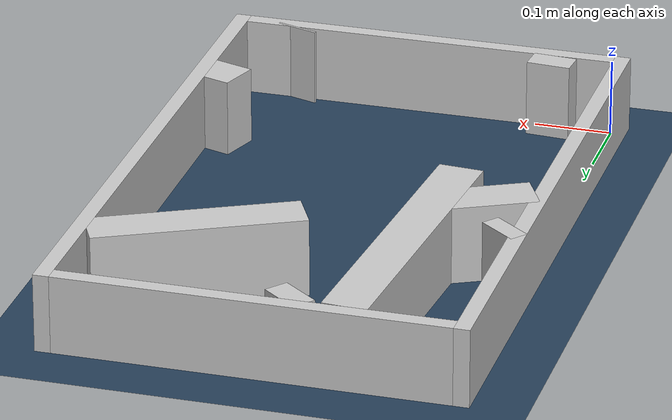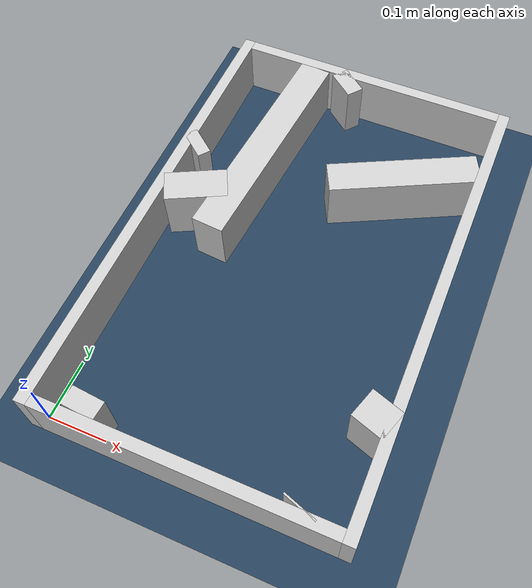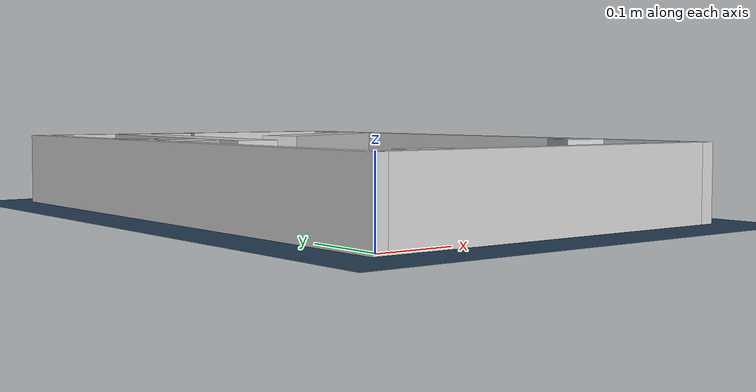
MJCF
<?xml version="1.0" ?>
<mujoco model="generated_real_template">
  <compiler angle="degree"/>
  <option timestep="0.002" integrator="implicitfast" iterations="100" cone="elliptic"/>
  <default>
    <geom density="1"/>
  </default>
  <asset>
    <texture builtin="gradient" height="3072" rgb1="0.3 0.5 0.7" rgb2="0 0 0" type="skybox" width="512"/>
    <texture builtin="checker" height="300" mark="edge" markrgb="0.8 0.8 0.8" name="groundplane" rgb1="0.2 0.3 0.4" rgb2="0.1 0.2 0.3" type="2d" width="300"/>
    <material name="groundplane" reflectance="0.2" texrepeat="5 5" texture="groundplane" texuniform="true"/>
  </asset>
  <worldbody>
    <light dir="0 0 -1" directional="true" pos="0 0 1.5"/>
    <geom name="floor" type="plane" condim="4" friction="0.5 0.005 0.001" material="groundplane" size="0 0 0.05"/>
    <body name="walls">
      <geom name="wall_boundary_left" type="box" condim="4" friction="1.0 0.005 0.0001" rgba="0.8 0.8 0.8 1" pos="-0.010000 0.387500 0.050000" euler="0 0 0.000000" size="0.010000 0.407500 0.050000"/>
      <geom name="wall_boundary_right" type="box" condim="4" friction="1.0 0.005 0.0001" rgba="0.8 0.8 0.8 1" pos="0.500000 0.387500 0.050000" euler="0 0 0.000000" size="0.010000 0.407500 0.050000"/>
      <geom name="wall_boundary_bottom" type="box" condim="4" friction="1.0 0.005 0.0001" rgba="0.8 0.8 0.8 1" pos="0.245000 -0.010000 0.050000" euler="0 0 0.000000" size="0.245000 0.010000 0.050000"/>
      <geom name="wall_boundary_top" type="box" condim="4" friction="1.0 0.005 0.0001" rgba="0.8 0.8 0.8 1" pos="0.245000 0.785000 0.050000" euler="0 0 0.000000" size="0.245000 0.010000 0.050000"/>
      <geom name="wall_inner_1_1" type="box" condim="4" friction="1.0 0.005 0.0001" rgba="0.8 0.8 0.8 1" pos="0.421174 0.001550 0.050000" euler="0 0 71.880067" size="0.001631 0.028500 0.050000"/>
      <geom name="wall_inner_1_2" type="box" condim="4" friction="1.0 0.005 0.0001" rgba="0.8 0.8 0.8 1" pos="0.474701 0.165123 0.050000" euler="0 0 71.880067" size="0.026402 0.028500 0.050000"/>
      <geom name="wall_inner_2_1" type="box" condim="4" friction="1.0 0.005 0.0001" rgba="0.8 0.8 0.8 1" pos="0.075690 0.015953 0.050000" euler="0 0 85.462508" size="0.016003 0.028500 0.050000"/>
      <geom name="wall_inner_2_2" type="box" condim="4" friction="1.0 0.005 0.0001" rgba="0.8 0.8 0.8 1" pos="0.119685 0.570325 0.050000" euler="0 0 85.462508" size="0.205318 0.028500 0.050000"/>
      <geom name="wall_inner_3_1" type="box" condim="4" friction="1.0 0.005 0.0001" rgba="0.8 0.8 0.8 1" pos="0.009730 0.519545 0.050000" euler="0 0 51.259293" size="0.011983 0.028500 0.050000"/>
      <geom name="wall_inner_3_2" type="box" condim="4" friction="1.0 0.005 0.0001" rgba="0.8 0.8 0.8 1" pos="0.204894 0.762795 0.050000" euler="0 0 51.259293" size="0.015648 0.028500 0.050000"/>
      <geom name="wall_inner_4_1" type="box" condim="4" friction="1.0 0.005 0.0001" rgba="0.8 0.8 0.8 1" pos="0.371434 0.597031 0.050000" euler="0 0 -153.277748" size="0.132744 0.028500 0.050000"/>
      <geom name="wall_inner_4_2" type="box" condim="4" friction="1.0 0.005 0.0001" rgba="0.8 0.8 0.8 1" pos="0.048760 0.434586 0.050000" euler="0 0 -153.277748" size="0.054590 0.028500 0.050000"/>
    </body>
  </worldbody>
</mujoco>
